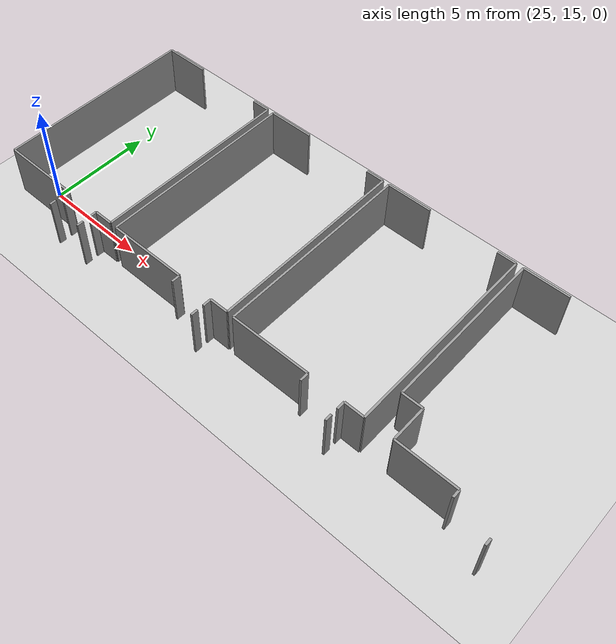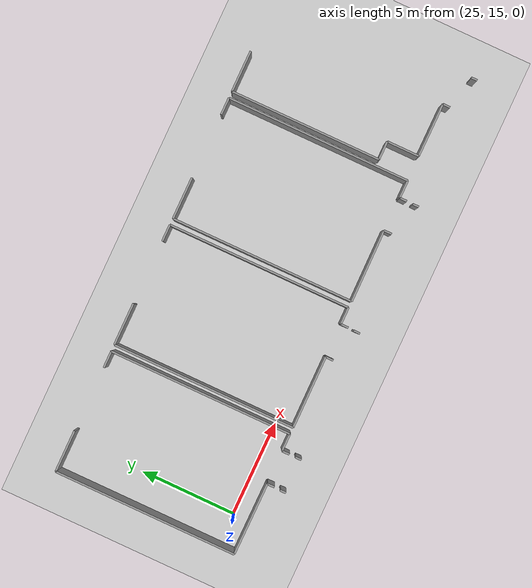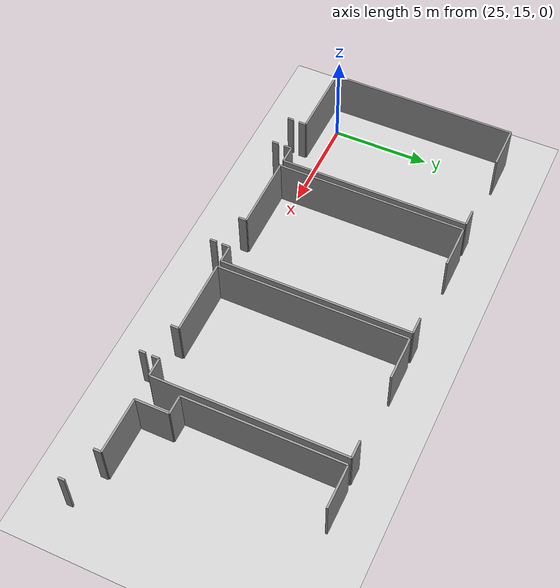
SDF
<sdf version="1.6">
 <world name="default">
  <model name="ground_plane">
   <static>1</static>
   <link name="link">
    <collision name="collision">
     <geometry><plane><normal>0 0 1</normal><size>100 100</size></plane></geometry>
     <surface><friction><ode><mu>100</mu><mu2>50</mu2></ode></friction></surface>
    </collision>
    <visual name="visual">
     <cast_shadows>0</cast_shadows>
     <geometry><plane><normal>0 0 1</normal><size>100 100</size></plane></geometry>
     <material>
      <script><uri>file://media/materials/scripts/gazebo.material</uri><name>Gazebo/Grey</name></script>
     </material>
    </visual>
   </link>
  </model>
  <model name="0510032197_A_40_1_105">
   <static>1</static>
   <link name="Wall_142">
    <collision name="Wall_142_Collision">
     <geometry><box><size>9.63243050878 0.1 2.5</size></box></geometry>
     <pose>4.81621525439 0 1.25 0 0 0</pose>
    </collision>
    <visual name="Wall_142_Visual">
     <pose>4.81621525439 0 1.25 0 0 0</pose>
     <geometry><box><size>9.63243050878 0.1 2.5</size></box></geometry>
     <material>
      <script><uri>file://media/materials/scripts/gazebo.material</uri><name>Gazebo/Grey</name></script>
      <ambient>1 1 1 1</ambient>
     </material>
    </visual>
    <pose>88.9580447133 -9.95221088219 0 0 0 1.57079632679</pose>
   </link>
   <link name="Wall_143">
    <collision name="Wall_143_Collision">
     <geometry><box><size>2.19918911018 0.1 2.5</size></box></geometry>
     <pose>1.09959455509 0 1.25 0 0 0</pose>
    </collision>
    <visual name="Wall_143_Visual">
     <pose>1.09959455509 0 1.25 0 0 0</pose>
     <geometry><box><size>2.19918911018 0.1 2.5</size></box></geometry>
     <material>
      <script><uri>file://media/materials/scripts/gazebo.material</uri><name>Gazebo/Grey</name></script>
      <ambient>1 1 1 1</ambient>
     </material>
    </visual>
    <pose>88.9580447133 -0.319780373416 0 0 0 0.0</pose>
   </link>
   <link name="Wall_144">
    <collision name="Wall_144_Collision">
     <geometry><box><size>0.87748954613 0.1 2.5</size></box></geometry>
     <pose>0.438744773065 0 1.25 0 0 0</pose>
    </collision>
    <visual name="Wall_144_Visual">
     <pose>0.438744773065 0 1.25 0 0 0</pose>
     <geometry><box><size>0.87748954613 0.1 2.5</size></box></geometry>
     <material>
      <script><uri>file://media/materials/scripts/gazebo.material</uri><name>Gazebo/Grey</name></script>
      <ambient>1 1 1 1</ambient>
     </material>
    </visual>
    <pose>94.5669111199 -0.319780373416 0 0 0 0.0</pose>
   </link>
   <link name="Wall_145">
    <collision name="Wall_145_Collision">
     <geometry><box><size>9.63026983058 0.1 2.5</size></box></geometry>
     <pose>4.81513491529 0 1.25 0 0 0</pose>
    </collision>
    <visual name="Wall_145_Visual">
     <pose>4.81513491529 0 1.25 0 0 0</pose>
     <geometry><box><size>9.63026983058 0.1 2.5</size></box></geometry>
     <material>
      <script><uri>file://media/materials/scripts/gazebo.material</uri><name>Gazebo/Grey</name></script>
      <ambient>1 1 1 1</ambient>
     </material>
    </visual>
    <pose>95.444400666 -0.319780373416 0 0 0 -1.57079632679</pose>
   </link>
   <link name="Wall_146">
    <collision name="Wall_146_Collision">
     <geometry><box><size>0.912441693463 0.1 2.5</size></box></geometry>
     <pose>0.456220846732 0 1.25 0 0 0</pose>
    </collision>
    <visual name="Wall_146_Visual">
     <pose>0.456220846732 0 1.25 0 0 0</pose>
     <geometry><box><size>0.912441693463 0.1 2.5</size></box></geometry>
     <material>
      <script><uri>file://media/materials/scripts/gazebo.material</uri><name>Gazebo/Grey</name></script>
      <ambient>1 1 1 1</ambient>
     </material>
    </visual>
    <pose>95.444400666 -9.95005020399 0 0 0 3.14159265359</pose>
   </link>
   <link name="Wall_147">
    <collision name="Wall_147_Collision">
     <geometry><box><size>0.40442811932 0.1 2.5</size></box></geometry>
     <pose>0.20221405966 0 1.25 0 0 0</pose>
    </collision>
    <visual name="Wall_147_Visual">
     <pose>0.20221405966 0 1.25 0 0 0</pose>
     <geometry><box><size>0.40442811932 0.1 2.5</size></box></geometry>
     <material>
      <script><uri>file://media/materials/scripts/gazebo.material</uri><name>Gazebo/Grey</name></script>
      <ambient>1 1 1 1</ambient>
     </material>
    </visual>
    <pose>94.5319589725 -9.95005020399 0 0 0 -1.57079632679</pose>
   </link>
   <link name="Wall_148">
    <collision name="Wall_148_Collision">
     <geometry><box><size>0.382821337333 0.1 2.5</size></box></geometry>
     <pose>0.191410668666 0 1.25 0 0 0</pose>
    </collision>
    <visual name="Wall_148_Visual">
     <pose>0.191410668666 0 1.25 0 0 0</pose>
     <geometry><box><size>0.382821337333 0.1 2.5</size></box></geometry>
     <material>
      <script><uri>file://media/materials/scripts/gazebo.material</uri><name>Gazebo/Grey</name></script>
      <ambient>1 1 1 1</ambient>
     </material>
    </visual>
    <pose>92.7701165495 -10.3544783233 0 0 0 1.57079632679</pose>
   </link>
   <link name="Wall_149">
    <collision name="Wall_149_Collision">
     <geometry><box><size>3.81212143501 0.1 2.5</size></box></geometry>
     <pose>1.90606071751 0 1.25 0 0 0</pose>
    </collision>
    <visual name="Wall_149_Visual">
     <pose>1.90606071751 0 1.25 0 0 0</pose>
     <geometry><box><size>3.81212143501 0.1 2.5</size></box></geometry>
     <material>
      <script><uri>file://media/materials/scripts/gazebo.material</uri><name>Gazebo/Grey</name></script>
      <ambient>1 1 1 1</ambient>
     </material>
    </visual>
    <pose>92.7701165495 -9.97165698598 0 0 0 3.13649150756</pose>
   </link>
   <link name="Wall_150">
    <collision name="Wall_150_Collision">
     <geometry><box><size>9.64857204591 0.1 2.5</size></box></geometry>
     <pose>4.82428602295 0 1.25 0 0 0</pose>
    </collision>
    <visual name="Wall_150_Visual">
     <pose>4.82428602295 0 1.25 0 0 0</pose>
     <geometry><box><size>9.64857204591 0.1 2.5</size></box></geometry>
     <material>
      <script><uri>file://media/materials/scripts/gazebo.material</uri><name>Gazebo/Grey</name></script>
      <ambient>1 1 1 1</ambient>
     </material>
    </visual>
    <pose>95.7953202252 -9.96339556934 0 0 0 1.57079632679</pose>
   </link>
   <link name="Wall_151">
    <collision name="Wall_151_Collision">
     <geometry><box><size>2.22193978063 0.1 2.5</size></box></geometry>
     <pose>1.11096989031 0 1.25 0 0 0</pose>
    </collision>
    <visual name="Wall_151_Visual">
     <pose>1.11096989031 0 1.25 0 0 0</pose>
     <geometry><box><size>2.22193978063 0.1 2.5</size></box></geometry>
     <material>
      <script><uri>file://media/materials/scripts/gazebo.material</uri><name>Gazebo/Grey</name></script>
      <ambient>1 1 1 1</ambient>
     </material>
    </visual>
    <pose>95.7953202252 -0.314823523431 0 0 0 0.0</pose>
   </link>
   <link name="Wall_152">
    <collision name="Wall_152_Collision">
     <geometry><box><size>0.884734173032 0.1 2.5</size></box></geometry>
     <pose>0.442367086516 0 1.25 0 0 0</pose>
    </collision>
    <visual name="Wall_152_Visual">
     <pose>0.442367086516 0 1.25 0 0 0</pose>
     <geometry><box><size>0.884734173032 0.1 2.5</size></box></geometry>
     <material>
      <script><uri>file://media/materials/scripts/gazebo.material</uri><name>Gazebo/Grey</name></script>
      <ambient>1 1 1 1</ambient>
     </material>
    </visual>
    <pose>101.384232133 -0.314823523431 0 0 0 0.0</pose>
   </link>
   <link name="Wall_153">
    <collision name="Wall_153_Collision">
     <geometry><box><size>9.63522668056 0.1 2.5</size></box></geometry>
     <pose>4.81761334028 0 1.25 0 0 0</pose>
    </collision>
    <visual name="Wall_153_Visual">
     <pose>4.81761334028 0 1.25 0 0 0</pose>
     <geometry><box><size>9.63522668056 0.1 2.5</size></box></geometry>
     <material>
      <script><uri>file://media/materials/scripts/gazebo.material</uri><name>Gazebo/Grey</name></script>
      <ambient>1 1 1 1</ambient>
     </material>
    </visual>
    <pose>102.268966306 -0.314823523431 0 0 0 -1.57079632679</pose>
   </link>
   <link name="Wall_154">
    <collision name="Wall_154_Collision">
     <geometry><box><size>0.899858920423 0.1 2.5</size></box></geometry>
     <pose>0.449929460212 0 1.25 0 0 0</pose>
    </collision>
    <visual name="Wall_154_Visual">
     <pose>0.449929460212 0 1.25 0 0 0</pose>
     <geometry><box><size>0.899858920423 0.1 2.5</size></box></geometry>
     <material>
      <script><uri>file://media/materials/scripts/gazebo.material</uri><name>Gazebo/Grey</name></script>
      <ambient>1 1 1 1</ambient>
     </material>
    </visual>
    <pose>102.268966306 -9.95005020399 0 0 0 3.14159265359</pose>
   </link>
   <link name="Wall_155">
    <collision name="Wall_155_Collision">
     <geometry><box><size>0.410655956481 0.1 2.5</size></box></geometry>
     <pose>0.205327978241 0 1.25 0 0 0</pose>
    </collision>
    <visual name="Wall_155_Visual">
     <pose>0.205327978241 0 1.25 0 0 0</pose>
     <geometry><box><size>0.410655956481 0.1 2.5</size></box></geometry>
     <material>
      <script><uri>file://media/materials/scripts/gazebo.material</uri><name>Gazebo/Grey</name></script>
      <ambient>1 1 1 1</ambient>
     </material>
    </visual>
    <pose>101.369107386 -9.95005020399 0 0 0 -1.57079632679</pose>
   </link>
   <link name="Wall_156">
    <collision name="Wall_156_Collision">
     <geometry><box><size>0.409639166741 0.1 2.5</size></box></geometry>
     <pose>0.20481958337 0 1.25 0 0 0</pose>
    </collision>
    <visual name="Wall_156_Visual">
     <pose>0.20481958337 0 1.25 0 0 0</pose>
     <geometry><box><size>0.409639166741 0.1 2.5</size></box></geometry>
     <material>
      <script><uri>file://media/materials/scripts/gazebo.material</uri><name>Gazebo/Grey</name></script>
      <ambient>1 1 1 1</ambient>
     </material>
    </visual>
    <pose>99.6061210742 -10.3607061605 0 0 0 1.57079632679</pose>
   </link>
   <link name="Wall_157">
    <collision name="Wall_157_Collision">
     <geometry><box><size>3.81082079147 0.1 2.5</size></box></geometry>
     <pose>1.90541039573 0 1.25 0 0 0</pose>
    </collision>
    <visual name="Wall_157_Visual">
     <pose>1.90541039573 0 1.25 0 0 0</pose>
     <geometry><box><size>3.81082079147 0.1 2.5</size></box></geometry>
     <material>
      <script><uri>file://media/materials/scripts/gazebo.material</uri><name>Gazebo/Grey</name></script>
      <ambient>1 1 1 1</ambient>
     </material>
    </visual>
    <pose>99.6061210742 -9.95106699373 0 0 0 -3.13835749828</pose>
   </link>
   <link name="Wall_158">
    <collision name="Wall_158_Collision">
     <geometry><box><size>9.64094612285 0.1 2.5</size></box></geometry>
     <pose>4.82047306143 0 1.25 0 0 0</pose>
    </collision>
    <visual name="Wall_158_Visual">
     <pose>4.82047306143 0 1.25 0 0 0</pose>
     <geometry><box><size>9.64094612285 0.1 2.5</size></box></geometry>
     <material>
      <script><uri>file://media/materials/scripts/gazebo.material</uri><name>Gazebo/Grey</name></script>
      <ambient>1 1 1 1</ambient>
     </material>
    </visual>
    <pose>102.605905006 -9.96708143215 0 0 0 1.57079632679</pose>
   </link>
   <link name="Wall_159">
    <collision name="Wall_159_Collision">
     <geometry><box><size>2.20719632939 0.1 2.5</size></box></geometry>
     <pose>1.10359816469 0 1.25 0 0 0</pose>
    </collision>
    <visual name="Wall_159_Visual">
     <pose>1.10359816469 0 1.25 0 0 0</pose>
     <geometry><box><size>2.20719632939 0.1 2.5</size></box></geometry>
     <material>
      <script><uri>file://media/materials/scripts/gazebo.material</uri><name>Gazebo/Grey</name></script>
      <ambient>1 1 1 1</ambient>
     </material>
    </visual>
    <pose>102.605905006 -0.326135309295 0 0 0 0.0</pose>
   </link>
   <link name="Wall_160">
    <collision name="Wall_160_Collision">
     <geometry><box><size>0.903417684516 0.1 2.5</size></box></geometry>
     <pose>0.451708842258 0 1.25 0 0 0</pose>
    </collision>
    <visual name="Wall_160_Visual">
     <pose>0.451708842258 0 1.25 0 0 0</pose>
     <geometry><box><size>0.903417684516 0.1 2.5</size></box></geometry>
     <material>
      <script><uri>file://media/materials/scripts/gazebo.material</uri><name>Gazebo/Grey</name></script>
      <ambient>1 1 1 1</ambient>
     </material>
    </visual>
    <pose>108.218330177 -0.326135309295 0 0 0 0.0</pose>
   </link>
   <link name="Wall_161">
    <collision name="Wall_161_Collision">
     <geometry><box><size>9.64412359079 0.1 2.5</size></box></geometry>
     <pose>4.8220617954 0 1.25 0 0 0</pose>
    </collision>
    <visual name="Wall_161_Visual">
     <pose>4.8220617954 0 1.25 0 0 0</pose>
     <geometry><box><size>9.64412359079 0.1 2.5</size></box></geometry>
     <material>
      <script><uri>file://media/materials/scripts/gazebo.material</uri><name>Gazebo/Grey</name></script>
      <ambient>1 1 1 1</ambient>
     </material>
    </visual>
    <pose>109.121747862 -0.326135309295 0 0 0 -1.57079632679</pose>
   </link>
   <link name="Wall_162">
    <collision name="Wall_162_Collision">
     <geometry><box><size>0.930871007512 0.1 2.5</size></box></geometry>
     <pose>0.465435503756 0 1.25 0 0 0</pose>
    </collision>
    <visual name="Wall_162_Visual">
     <pose>0.465435503756 0 1.25 0 0 0</pose>
     <geometry><box><size>0.930871007512 0.1 2.5</size></box></geometry>
     <material>
      <script><uri>file://media/materials/scripts/gazebo.material</uri><name>Gazebo/Grey</name></script>
      <ambient>1 1 1 1</ambient>
     </material>
    </visual>
    <pose>109.121747862 -9.97025890009 0 0 0 3.14159265359</pose>
   </link>
   <link name="Wall_163">
    <collision name="Wall_163_Collision">
     <geometry><box><size>0.385109114249 0.1 2.5</size></box></geometry>
     <pose>0.192554557125 0 1.25 0 0 0</pose>
    </collision>
    <visual name="Wall_163_Visual">
     <pose>0.192554557125 0 1.25 0 0 0</pose>
     <geometry><box><size>0.385109114249 0.1 2.5</size></box></geometry>
     <material>
      <script><uri>file://media/materials/scripts/gazebo.material</uri><name>Gazebo/Grey</name></script>
      <ambient>1 1 1 1</ambient>
     </material>
    </visual>
    <pose>108.190876854 -9.97025890009 0 0 0 -1.57079632679</pose>
   </link>
   <link name="Wall_164">
    <collision name="Wall_164_Collision">
     <geometry><box><size>0.414214720573 0.1 2.5</size></box></geometry>
     <pose>0.207107360287 0 1.25 0 0 0</pose>
    </collision>
    <visual name="Wall_164_Visual">
     <pose>0.207107360287 0 1.25 0 0 0</pose>
     <geometry><box><size>0.414214720573 0.1 2.5</size></box></geometry>
     <material>
      <script><uri>file://media/materials/scripts/gazebo.material</uri><name>Gazebo/Grey</name></script>
      <ambient>1 1 1 1</ambient>
     </material>
    </visual>
    <pose>106.42026462 -10.3553680143 0 0 0 1.57079632679</pose>
   </link>
   <link name="Wall_165">
    <collision name="Wall_165_Collision">
     <geometry><box><size>3.81444773545 0.1 2.5</size></box></geometry>
     <pose>1.90722386773 0 1.25 0 0 0</pose>
    </collision>
    <visual name="Wall_165_Visual">
     <pose>1.90722386773 0 1.25 0 0 0</pose>
     <geometry><box><size>3.81444773545 0.1 2.5</size></box></geometry>
     <material>
      <script><uri>file://media/materials/scripts/gazebo.material</uri><name>Gazebo/Grey</name></script>
      <ambient>1 1 1 1</ambient>
     </material>
    </visual>
    <pose>106.42026462 -9.94115329376 0 0 0 -3.1347952507</pose>
   </link>
   <link name="Wall_166">
    <collision name="Wall_166_Collision">
     <geometry><box><size>1.69142973347 0.1 2.5</size></box></geometry>
     <pose>0.845714866737 0 1.25 0 0 0</pose>
    </collision>
    <visual name="Wall_166_Visual">
     <pose>0.845714866737 0 1.25 0 0 0</pose>
     <geometry><box><size>1.69142973347 0.1 2.5</size></box></geometry>
     <material>
      <script><uri>file://media/materials/scripts/gazebo.material</uri><name>Gazebo/Grey</name></script>
      <ambient>1 1 1 1</ambient>
     </material>
    </visual>
    <pose>110.438617674 -9.94788952579 0 0 0 1.57079632679</pose>
   </link>
   <link name="Wall_167">
    <collision name="Wall_167_Collision">
     <geometry><box><size>0.971034202265 0.1 2.5</size></box></geometry>
     <pose>0.485517101132 0 1.25 0 0 0</pose>
    </collision>
    <visual name="Wall_167_Visual">
     <pose>0.485517101132 0 1.25 0 0 0</pose>
     <geometry><box><size>0.971034202265 0.1 2.5</size></box></geometry>
     <material>
      <script><uri>file://media/materials/scripts/gazebo.material</uri><name>Gazebo/Grey</name></script>
      <ambient>1 1 1 1</ambient>
     </material>
    </visual>
    <pose>110.438617674 -8.25645979232 0 0 0 3.14159265359</pose>
   </link>
   <link name="Wall_168">
    <collision name="Wall_168_Collision">
     <geometry><box><size>7.929434792 0.1 2.5</size></box></geometry>
     <pose>3.964717396 0 1.25 0 0 0</pose>
    </collision>
    <visual name="Wall_168_Visual">
     <pose>3.964717396 0 1.25 0 0 0</pose>
     <geometry><box><size>7.929434792 0.1 2.5</size></box></geometry>
     <material>
      <script><uri>file://media/materials/scripts/gazebo.material</uri><name>Gazebo/Grey</name></script>
      <ambient>1 1 1 1</ambient>
     </material>
    </visual>
    <pose>109.467583472 -8.25645979232 0 0 0 1.57079632679</pose>
   </link>
   <link name="Wall_169">
    <collision name="Wall_169_Collision">
     <geometry><box><size>2.16830412181 0.1 2.5</size></box></geometry>
     <pose>1.08415206091 0 1.25 0 0 0</pose>
    </collision>
    <visual name="Wall_169_Visual">
     <pose>1.08415206091 0 1.25 0 0 0</pose>
     <geometry><box><size>2.16830412181 0.1 2.5</size></box></geometry>
     <material>
      <script><uri>file://media/materials/scripts/gazebo.material</uri><name>Gazebo/Grey</name></script>
      <ambient>1 1 1 1</ambient>
     </material>
    </visual>
    <pose>109.467583472 -0.327025000318 0 0 0 0.0</pose>
   </link>
   <link name="Wall_175">
    <collision name="Wall_175_Collision">
     <geometry><box><size>0.379135474523 0.1 2.5</size></box></geometry>
     <pose>0.189567737262 0 1.25 0 0 0</pose>
    </collision>
    <visual name="Wall_175_Visual">
     <pose>0.189567737262 0 1.25 0 0 0</pose>
     <geometry><box><size>0.379135474523 0.1 2.5</size></box></geometry>
     <material>
      <script><uri>file://media/materials/scripts/gazebo.material</uri><name>Gazebo/Grey</name></script>
      <ambient>1 1 1 1</ambient>
     </material>
    </visual>
    <pose>113.244957358 -10.3357948118 0 0 0 1.57079632679</pose>
   </link>
   <link name="Wall_176">
    <collision name="Wall_176_Collision">
     <geometry><box><size>2.80635338683 0.1 2.5</size></box></geometry>
     <pose>1.40317669341 0 1.25 0 0 0</pose>
    </collision>
    <visual name="Wall_176_Visual">
     <pose>1.40317669341 0 1.25 0 0 0</pose>
     <geometry><box><size>2.80635338683 0.1 2.5</size></box></geometry>
     <material>
      <script><uri>file://media/materials/scripts/gazebo.material</uri><name>Gazebo/Grey</name></script>
      <ambient>1 1 1 1</ambient>
     </material>
    </visual>
    <pose>113.244957358 -9.95665933731 0 0 0 3.13846766376</pose>
   </link>
   <link name="Wall_498">
    <collision name="Wall_498_Collision">
     <geometry><box><size>0.313679634972 0.1 2.5</size></box></geometry>
     <pose>0.156839817486 0 1.25 0 0 0</pose>
    </collision>
    <visual name="Wall_498_Visual">
     <pose>0.156839817486 0 1.25 0 0 0</pose>
     <geometry><box><size>0.313679634972 0.1 2.5</size></box></geometry>
     <material>
      <script><uri>file://media/materials/scripts/gazebo.material</uri><name>Gazebo/Grey</name></script>
      <ambient>1 1 1 1</ambient>
     </material>
    </visual>
    <pose>92.7499078534 -10.9841253702 0 0 0 1.57079632679</pose>
   </link>
   <link name="Wall_499">
    <collision name="Wall_499_Collision">
     <geometry><box><size>0.327787592623 0.1 2.5</size></box></geometry>
     <pose>0.163893796312 0 1.25 0 0 0</pose>
    </collision>
    <visual name="Wall_499_Visual">
     <pose>0.163893796312 0 1.25 0 0 0</pose>
     <geometry><box><size>0.327787592623 0.1 2.5</size></box></geometry>
     <material>
      <script><uri>file://media/materials/scripts/gazebo.material</uri><name>Gazebo/Grey</name></script>
      <ambient>1 1 1 1</ambient>
     </material>
    </visual>
    <pose>94.533102861 -10.6704457352 0 0 0 -1.57079632679</pose>
   </link>
   <link name="Wall_502">
    <collision name="Wall_502_Collision">
     <geometry><box><size>0.334650923372 0.1 2.5</size></box></geometry>
     <pose>0.167325461686 0 1.25 0 0 0</pose>
    </collision>
    <visual name="Wall_502_Visual">
     <pose>0.167325461686 0 1.25 0 0 0</pose>
     <geometry><box><size>0.334650923372 0.1 2.5</size></box></geometry>
     <material>
      <script><uri>file://media/materials/scripts/gazebo.material</uri><name>Gazebo/Grey</name></script>
      <ambient>1 1 1 1</ambient>
     </material>
    </visual>
    <pose>101.347373505 -10.6605320352 0 0 0 -1.57079632679</pose>
   </link>
   <link name="Wall_505">
    <collision name="Wall_505_Collision">
     <geometry><box><size>0.318255188805 0.1 2.5</size></box></geometry>
     <pose>0.159127594403 0 1.25 0 0 0</pose>
    </collision>
    <visual name="Wall_505_Visual">
     <pose>0.159127594403 0 1.25 0 0 0</pose>
     <geometry><box><size>0.318255188805 0.1 2.5</size></box></geometry>
     <material>
      <script><uri>file://media/materials/scripts/gazebo.material</uri><name>Gazebo/Grey</name></script>
      <ambient>1 1 1 1</ambient>
     </material>
    </visual>
    <pose>108.183632227 -10.6766735724 0 0 0 -1.57079632679</pose>
   </link>
   <link name="Wall_508">
    <collision name="Wall_508_Collision">
     <geometry><box><size>0.309866673445 0.1 2.5</size></box></geometry>
     <pose>0.154933336723 0 1.25 0 0 0</pose>
    </collision>
    <visual name="Wall_508_Visual">
     <pose>0.154933336723 0 1.25 0 0 0</pose>
     <geometry><box><size>0.309866673445 0.1 2.5</size></box></geometry>
     <material>
      <script><uri>file://media/materials/scripts/gazebo.material</uri><name>Gazebo/Grey</name></script>
      <ambient>1 1 1 1</ambient>
     </material>
    </visual>
    <pose>115.005274597 -10.6764193749 0 0 0 -1.57079632679</pose>
   </link>
   <pose>-65.5 24.1613162343 0 0 0 0</pose>
  </model>
 </world>
</sdf>
